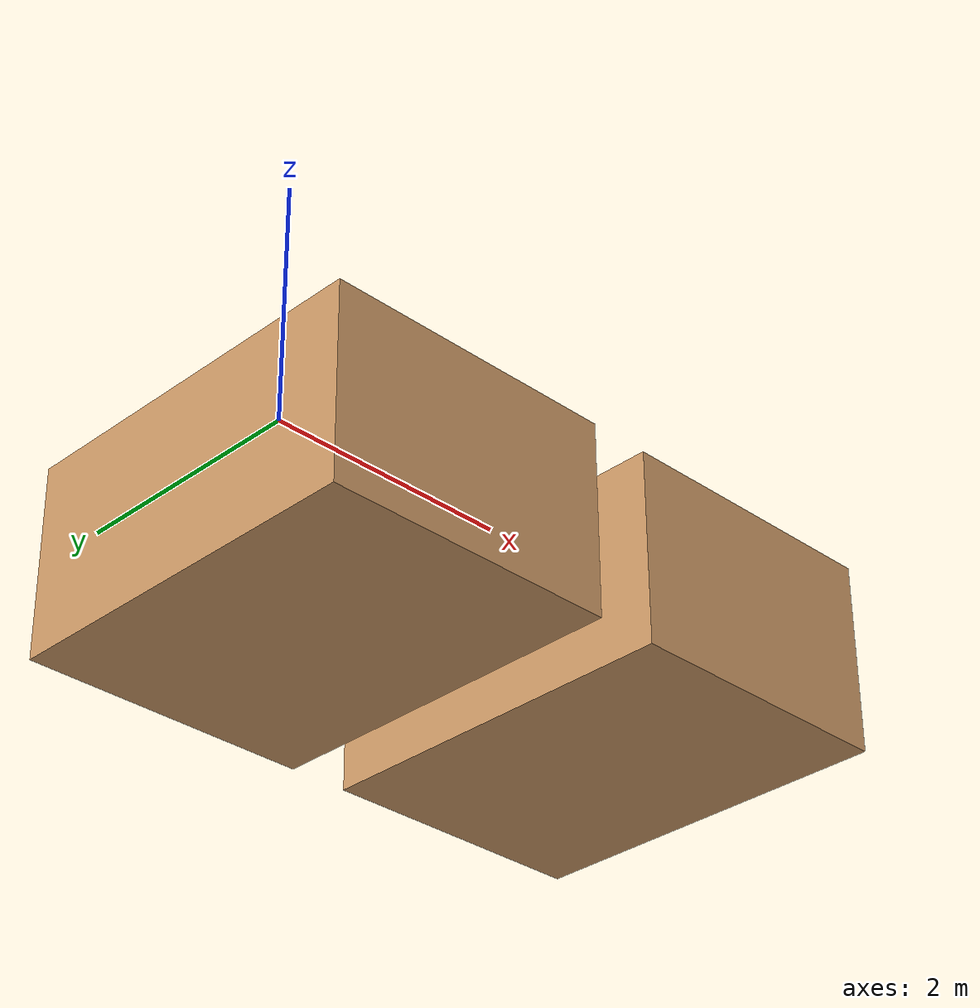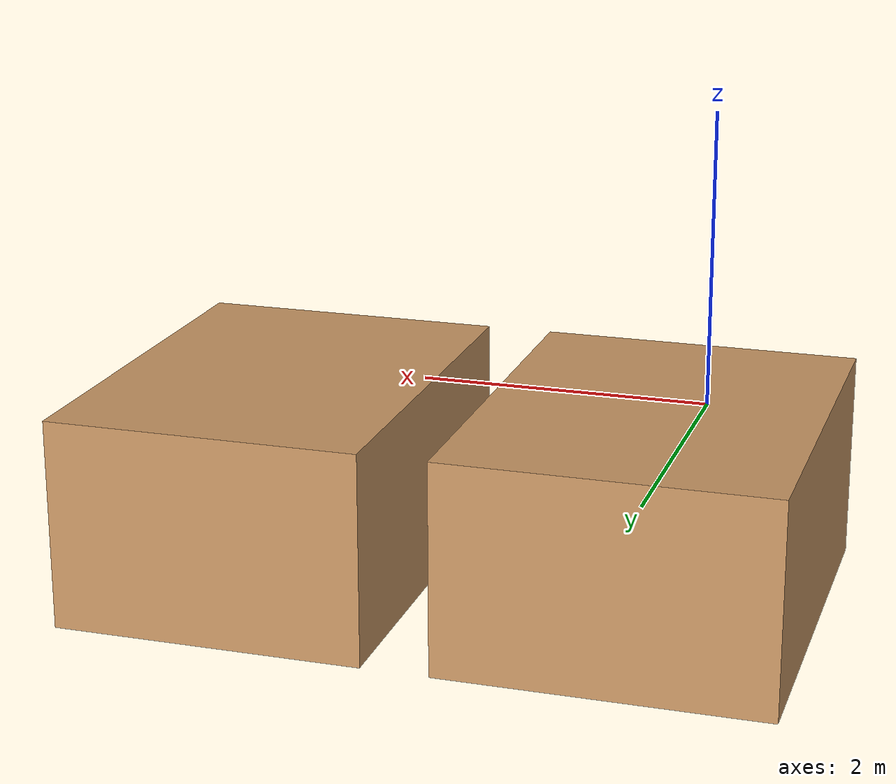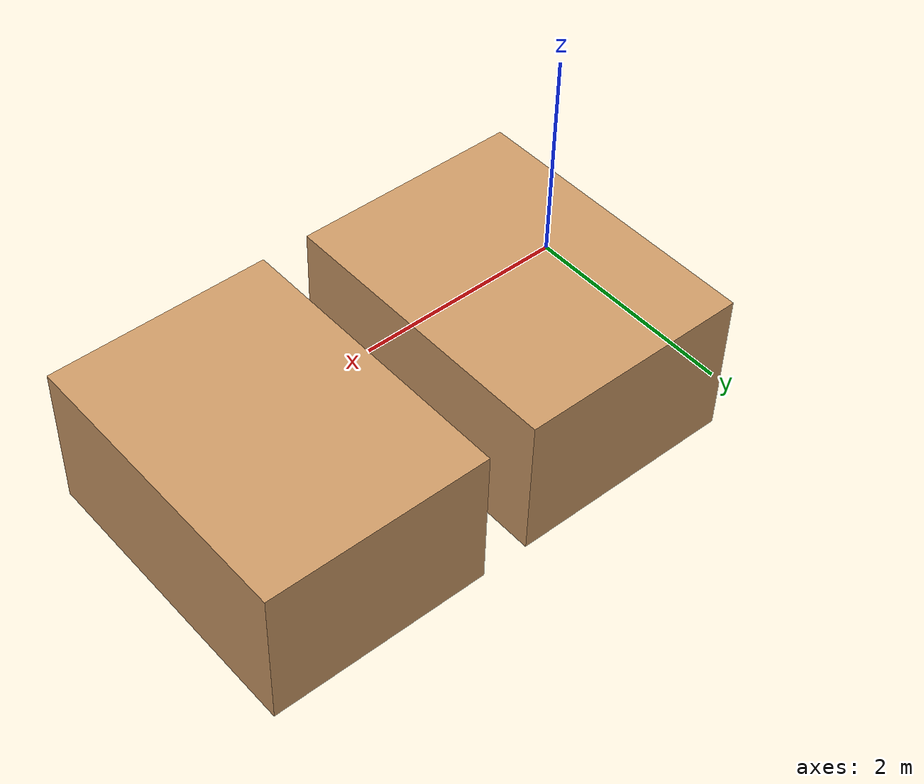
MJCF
<mujoco model="multi_motion_trench_terrain">
  <asset>
    <mesh name="multi_motion_trench_terrain_mesh0" file="meshs/multi_motion_trench_terrain_mesh0.stl"/>
    <mesh name="multi_motion_trench_terrain_mesh1" file="meshs/multi_motion_trench_terrain_mesh1.stl"/>
  </asset>
  <worldbody>
    <geom type="mesh" mesh="multi_motion_trench_terrain_mesh0" rgba="0.8 0.6 0.4 1" pos="-0.8 -1.5 -0.05" contype="1" conaffinity="1" group="1"/>
    <geom type="mesh" mesh="multi_motion_trench_terrain_mesh1" rgba="0.8 0.6 0.4 1" pos="-0.8 -1.5 -0.05" contype="1" conaffinity="1" group="1"/>
  </worldbody>
  <custom>
    <text name="terrain:multi_motion_trench_terrain" data="difficulty:0.8886828397654662"/>
    <text name="terrain_key_pos0:init" data="0.0 0.0 -0.05"/>
    <text name="terrain_key_pos1:trench_edge" data="1.4999999999999998 0.0 -0.05"/>
    <text name="terrain_key_pos2:trench_edge force" data="1.5999999999999999 0.0 -0.05"/>
    <text name="terrain_key_pos3:trench_edge force end" data="1.7 0.0 -0.05"/>
    <text name="terrain_key_pos4:trench other edge" data="1.977736567953093 0.0 -0.05"/>
    <text name="terrain_key_pos5:trench end" data="2.0777365679530932 0.0 -0.05"/>
    <text name="terrain_key_pos6:end" data="3.088868283976547 0.0 -0.05"/>
  </custom>
</mujoco>
